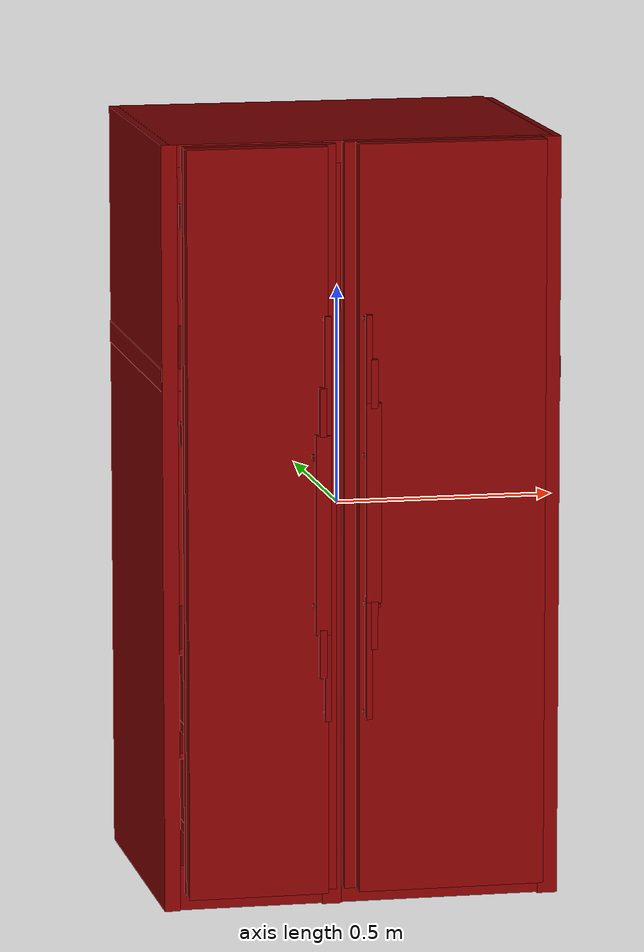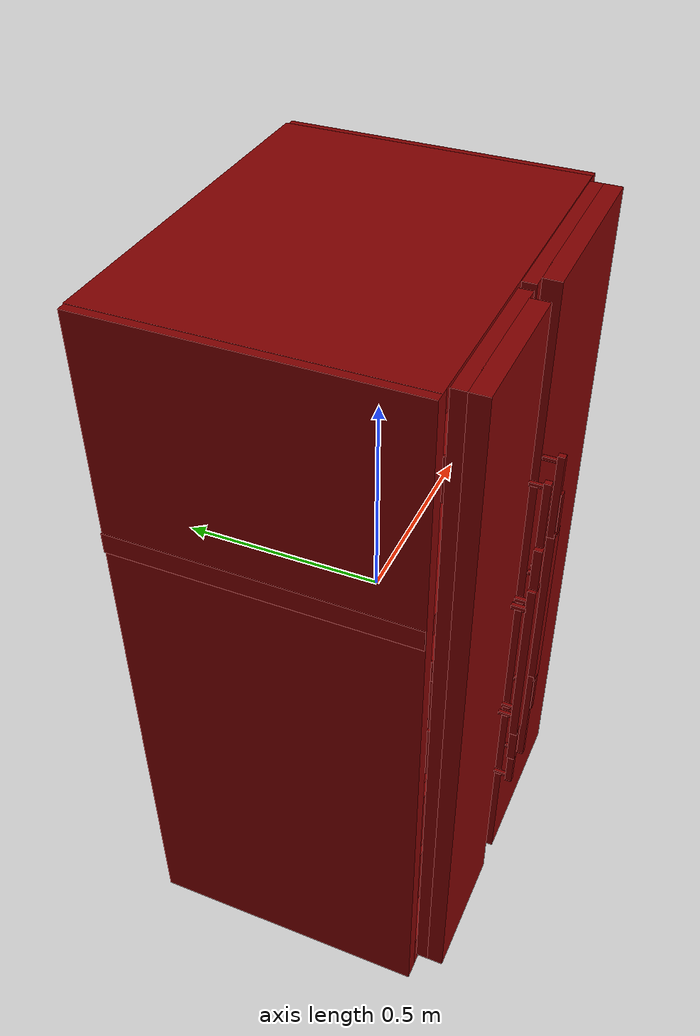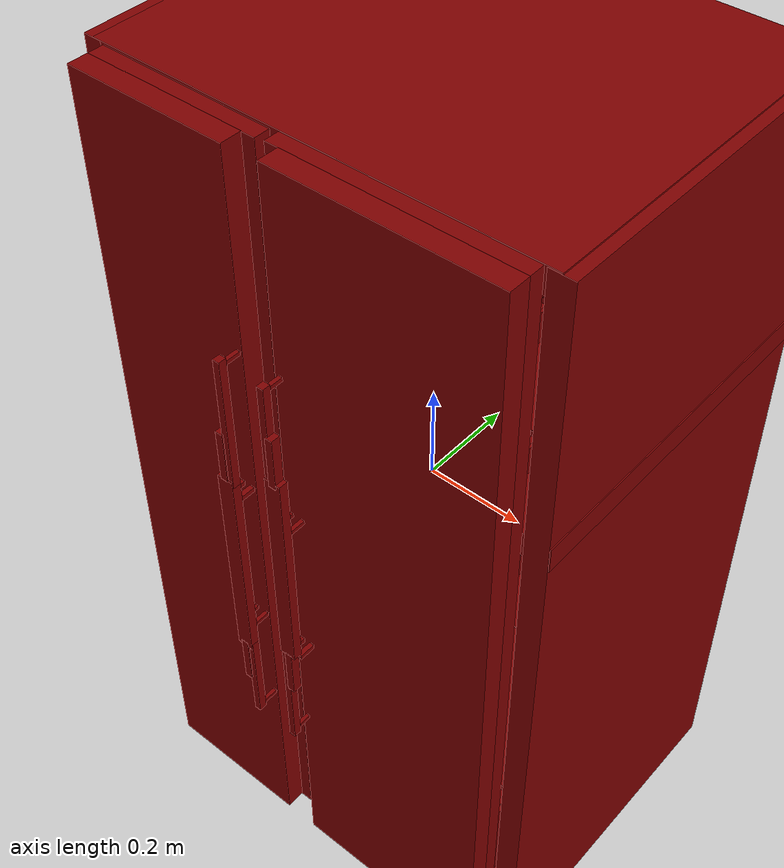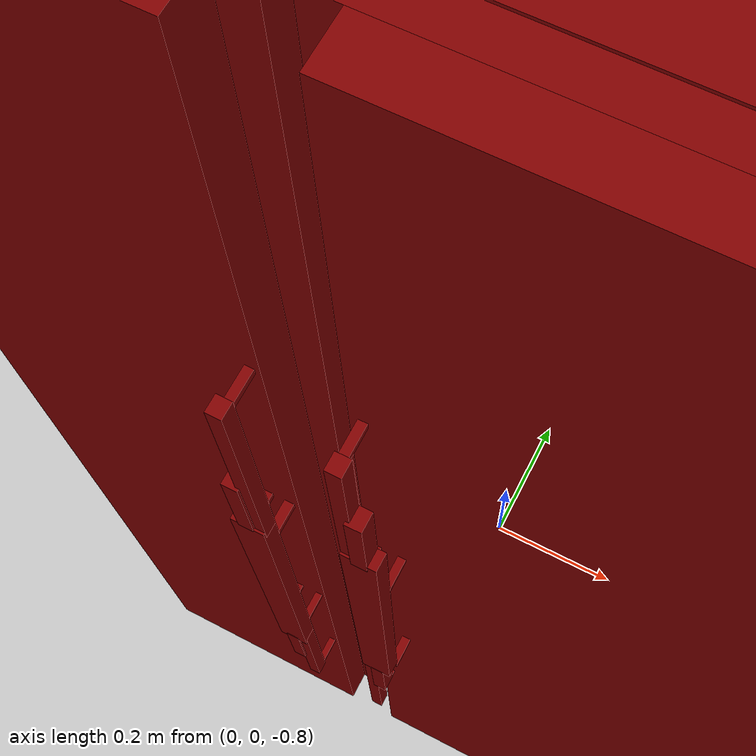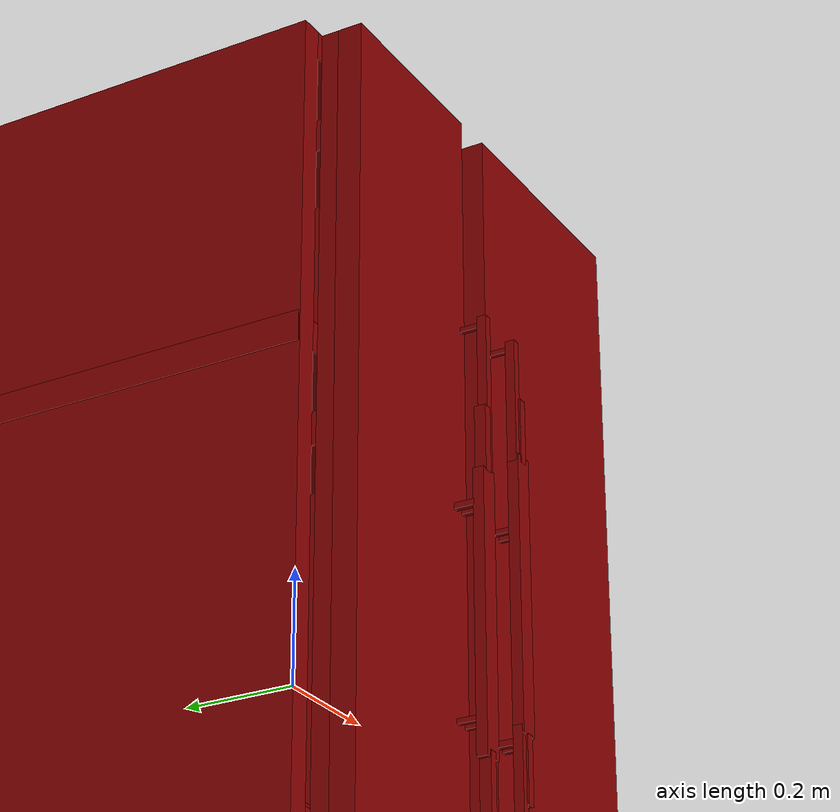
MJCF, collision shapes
<mujoco model="model">
  <compiler angle="radian"/>
  <asset>
    <mesh file="visuals/Body001.obj" name="Body001_vis"/>
    <mesh file="visuals/Body001_Clear.obj" name="Body001_Clear_vis"/>
    <mesh file="visuals/Door001.obj" name="Door001_vis"/>
    <mesh file="visuals/Door001_Clear.obj" name="Door001_Clear_vis"/>
    <mesh file="visuals/Door002.obj" name="Door002_vis"/>
    <mesh file="visuals/Door002_Clear.obj" name="Door002_Clear_vis"/>
    <mesh file="visuals/Drawer001.obj" name="Drawer001_vis"/>
    <mesh file="visuals/Drawer002.obj" name="Drawer002_vis"/>
    <mesh file="visuals/Drawer003.obj" name="Drawer003_vis"/>
    <texture file="visuals/T_BC001.png" name="Body001_material" type="2d"/>
    <material name="Body001_material" rgba="1 1 1 1.0" texture="Body001_material" shininess="0.2512328028678894" specular="0.3103448502657381"/>
    <texture file="visuals/T_BC001.png" name="Body001_Clear_material" type="2d"/>
    <material name="Body001_Clear_material" rgba="1 1 1 0.5330076217651367" texture="Body001_Clear_material" shininess="0.2512328028678894" specular="0.3103448502657381"/>
    <texture file="visuals/T_BC001.png" name="Door001_material" type="2d"/>
    <material name="Door001_material" rgba="1 1 1 1.0" texture="Door001_material" shininess="0.2512328028678894" specular="0.3103448502657381"/>
    <texture file="visuals/T_BC001.png" name="Door001_Clear_material" type="2d"/>
    <material name="Door001_Clear_material" rgba="1 1 1 0.5330076217651367" texture="Door001_Clear_material" shininess="0.2512328028678894" specular="0.3103448502657381"/>
    <texture file="visuals/T_BC001.png" name="Door002_material" type="2d"/>
    <material name="Door002_material" rgba="1 1 1 1.0" texture="Door002_material" shininess="0.2512328028678894" specular="0.3103448502657381"/>
    <texture file="visuals/T_BC001.png" name="Door002_Clear_material" type="2d"/>
    <material name="Door002_Clear_material" rgba="1 1 1 0.5330076217651367" texture="Door002_Clear_material" shininess="0.2512328028678894" specular="0.3103448502657381"/>
    <texture file="visuals/T_BC001.png" name="Drawer001_material" type="2d"/>
    <material name="Drawer001_material" rgba="1 1 1 1.0" texture="Drawer001_material" shininess="0.2512328028678894" specular="0.3103448502657381"/>
    <texture file="visuals/T_BC001.png" name="Drawer002_material" type="2d"/>
    <material name="Drawer002_material" rgba="1 1 1 1.0" texture="Drawer002_material" shininess="0.2512328028678894" specular="0.3103448502657381"/>
    <texture file="visuals/T_BC001.png" name="Drawer003_material" type="2d"/>
    <material name="Drawer003_material" rgba="1 1 1 1.0" texture="Drawer003_material" shininess="0.2512328028678894" specular="0.3103448502657381"/>
  </asset>
  <default>
    <default class="visual">
      <geom conaffinity="0" contype="0" group="1" type="mesh"/>
    </default>
    <default class="collision">
      <geom group="0" rgba="0.5 0 0 0.5"/>
    </default>
    <default class="spawn">
      <geom group="0" rgba="1 1 1 0.5" contype="0" conaffinity="0"/>
      <site group="0" rgba="1 1 1 0.5"/>
    </default>
    <default class="region">
      <geom group="1" conaffinity="0" contype="0" rgba="0 1 0 0"/>
    </default>
  </default>
  <worldbody>
    <body>
      <body name="object">
        <geom mesh="Body001_vis" type="mesh" solimp="0.998 0.998 0.001" solref="0.001 1" density="100" friction="0.95 0.3 0.1" class="visual" material="Body001_material"/>
        <geom class="collision" type="box" pos="-0.000009 0.061382 0.345156" size="0.4551748037338257 0.34732121229171753 0.024669639766216278" quat="1.0 0.0 0.0 0.0"/>
        <geom class="collision" type="box" pos="0.187564 0.043811 -0.051178" size="0.26039761304855347 0.20222607254981995 0.0018634488806128502" quat="1.0 0.0 0.0 0.0"/>
        <geom class="collision" type="box" pos="0.430015 0.059138 -0.000961" size="0.023106148466467857 0.3465227484703064 0.8700745701789856" quat="1.0 0.0 0.0 0.0"/>
        <geom class="collision" type="box" pos="-0.435713 0.059488 0.000448" size="0.017995212227106094 0.34687235951423645 0.8709715604782104" quat="1.0 0.0 0.0 0.0"/>
        <geom class="collision" type="box" pos="-0.001253 0.353783 -0.021303" size="0.4329327940940857 0.0541754849255085 0.8490660786628723" quat="1.0 0.0 0.0 0.0"/>
        <geom class="collision" type="box" pos="-0.001253 0.059835 -0.816540" size="0.4329327940940857 0.34721818566322327 0.05179665610194206" quat="1.0 0.0 0.0 0.0"/>
        <geom class="collision" type="box" pos="-0.001253 0.060632 0.847166" size="0.4329327940940857 0.34801560640335083 0.024715343490242958" quat="1.0 0.0 0.0 0.0"/>
        <geom class="collision" type="box" pos="-0.070540 0.058271 -0.000589" size="0.021640107035636902 0.34565427899360657 0.8703340888023376" quat="1.0 0.0 0.0 0.0"/>
        <geom class="collision" type="box" pos="-0.098335 0.063859 -0.312636" size="0.0029914805199950933 0.2397865653038025 0.008411023765802383" quat="1.0 0.0 0.0 0.0"/>
        <geom class="collision" type="box" pos="-0.414439 0.063859 -0.312636" size="0.00411334540694952 0.23978663980960846 0.008411029353737831" quat="1.0 0.0 0.0 0.0"/>
        <geom class="collision" type="box" pos="-0.098335 0.063859 -0.554068" size="0.00299148284830153 0.23978671431541443 0.008411034010350704" quat="1.0 0.0 0.0 0.0"/>
        <geom class="collision" type="box" pos="-0.414439 0.063859 -0.554068" size="0.004113347735255957 0.2397868037223816 0.008411038666963577" quat="1.0 0.0 0.0 0.0"/>
        <body name="Body001_Clear">
          <geom mesh="Body001_Clear_vis" type="mesh" solimp="0.998 0.998 0.001" solref="0.001 1" density="100" friction="0.95 0.3 0.1" class="visual" material="Body001_Clear_material"/>
          <geom class="collision" type="box" pos="-0.257040 0.051626 -0.296147" size="0.15733465552330017 0.23283542692661285 0.006855808664113283" quat="1.0 0.0 0.0 0.0"/>
          <geom class="collision" type="box" pos="-0.257040 0.051626 -0.537620" size="0.15733465552330017 0.23283542692661285 0.006855808664113283" quat="1.0 0.0 0.0 0.0"/>
          <geom class="collision" type="box" pos="0.179082 0.051626 -0.526268" size="0.22332853078842163 0.23283542692661285 0.006593691185116768" quat="1.0 0.0 0.0 0.0"/>
        </body>
        <body name="Door001">
          <joint axis="0.0 0.0 -1.0" pos="-0.415863 -0.320992 0.019250" limited="true" name="Door001_joint" range="0.0 1.5707963267948966" type="hinge" damping="1" frictionloss="1" armature=".01" stiffness="0.05"/>
          <geom mesh="Door001_vis" type="mesh" solimp="0.998 0.998 0.001" solref="0.001 1" density="100" friction="0.95 0.3 0.1" class="visual" material="Door001_material"/>
          <geom class="collision" type="box" pos="-0.111638 -0.398633 0.003568" size="0.017077449709177017 0.009212208911776543 0.2260974496603012" quat="1.0 0.0 0.0 0.0"/>
          <geom class="collision" type="box" pos="-0.237458 -0.304140 0.019879" size="0.17176243662834167 0.014860705472528934 0.8486267924308777" quat="1.0 0.0 0.0 0.0"/>
          <geom class="collision" type="box" pos="-0.250457 -0.338323 0.019879" size="0.15876346826553345 0.020233258605003357 0.8486267924308777" quat="1.0 0.0 0.0 0.0"/>
          <geom class="collision" type="box" pos="-0.101523 -0.397373 -0.315944" size="0.006962744519114494 0.007952835410833359 0.10452728718519211" quat="1.0 0.0 0.0 0.0"/>
          <geom class="collision" type="box" pos="-0.112621 -0.398857 -0.265896" size="0.007784663699567318 0.009436936117708683 0.054479122161865234" quat="1.0 0.0 0.0 0.0"/>
          <geom class="collision" type="box" pos="-0.101523 -0.397373 0.355696" size="0.006962744519114494 0.007952835410833359 0.14035047590732574" quat="1.0 0.0 0.0 0.0"/>
          <geom class="collision" type="box" pos="-0.112621 -0.398857 0.281305" size="0.007784663699567318 0.009436936117708683 0.054479122161865234" quat="1.0 0.0 0.0 0.0"/>
          <geom class="collision" type="box" pos="-0.099518 -0.374039 -0.408813" size="0.004085476975888014 0.0163087360560894 0.004085476975888014" quat="1.0 0.0 0.0 0.0"/>
          <geom class="collision" type="box" pos="-0.099518 -0.374039 -0.163676" size="0.004085476975888014 0.0163087360560894 0.004085476975888014" quat="1.0 0.0 0.0 0.0"/>
          <geom class="collision" type="box" pos="-0.124591 -0.374039 -0.163676" size="0.004085476975888014 0.0163087360560894 0.004085476975888014" quat="1.0 0.0 0.0 0.0"/>
          <geom class="collision" type="box" pos="-0.101832 -0.374039 0.174451" size="0.00505023030564189 0.017273489385843277 0.00505023030564189" quat="1.0 0.0 0.0 0.0"/>
          <geom class="collision" type="box" pos="-0.124497 -0.374039 0.174451" size="0.00505023030564189 0.017273489385843277 0.00505023030564189" quat="1.0 0.0 0.0 0.0"/>
          <geom class="collision" type="box" pos="-0.100583 -0.374828 0.483232" size="0.004085476975888014 0.0163087360560894 0.004085476975888014" quat="1.0 0.0 0.0 0.0"/>
          <body name="Door001_Clear">
            <geom mesh="Door001_Clear_vis" type="mesh" solimp="0.998 0.998 0.001" solref="0.001 1" density="100" friction="0.95 0.3 0.1" class="visual" material="Door001_Clear_material"/>
            <geom class="collision" type="box" pos="-0.292838 -0.188933 0.721048" size="0.10166554898023605 0.0009907971834763885 0.0039306567050516605" quat="0.9878596663475037 -0.15534904599189758 -0.0 0.0"/>
            <geom class="collision" type="box" pos="-0.395530 -0.238090 0.699530" size="0.0023995519150048494 0.047248587012290955 0.026977719739079475" quat="1.0 0.0 0.0 0.0"/>
            <geom class="collision" type="box" pos="-0.187393 -0.238090 0.699530" size="0.0023995533119887114 0.04724857211112976 0.02697771042585373" quat="1.0 0.0 0.0 0.0"/>
            <geom class="collision" type="box" pos="-0.291665 -0.239565 0.674302" size="0.10502640157938004 0.04872364550828934 0.002399544231593609" quat="1.0 0.0 0.0 0.0"/>
            <geom class="collision" type="box" pos="-0.291462 -0.188556 0.228221" size="0.10166563093662262 0.0009907978819683194 0.003930659033358097" quat="0.9825620055198669 -0.1859353482723236 -0.0 0.0"/>
            <geom class="collision" type="box" pos="-0.395530 -0.238090 0.206702" size="0.0023995547089725733 0.047248680144548416 0.026977764442563057" quat="1.0 0.0 0.0 0.0"/>
            <geom class="collision" type="box" pos="-0.187393 -0.238090 0.206702" size="0.002399554941803217 0.047248661518096924 0.02697775512933731" quat="1.0 0.0 0.0 0.0"/>
            <geom class="collision" type="box" pos="-0.291665 -0.239565 0.181475" size="0.10502658039331436 0.0487237349152565 0.0023995470255613327" quat="1.0 0.0 0.0 0.0"/>
          </body>
        </body>
        <body name="Door002">
          <joint axis="0.0 0.0 1.0" pos="0.421194 -0.326735 0.019919" limited="true" name="Door002_joint" range="0.0 1.5707963267948966" type="hinge" damping="1" frictionloss="1" armature=".01" stiffness="0.05"/>
          <geom mesh="Door002_vis" type="mesh" solimp="0.998 0.998 0.001" solref="0.001 1" density="100" friction="0.95 0.3 0.1" class="visual" material="Door002_material"/>
          <geom class="collision" type="box" pos="0.002212 -0.398633 0.072589" size="0.017077485099434853 0.009212208911776543 0.2260974496603012" quat="1.0 0.0 0.0 0.0"/>
          <geom class="collision" type="box" pos="0.178411 -0.304140 0.021697" size="0.22578851878643036 0.014860705472528934 0.8504474759101868" quat="1.0 0.0 0.0 0.0"/>
          <geom class="collision" type="box" pos="0.191455 -0.338323 0.021697" size="0.21288415789604187 0.020233258605003357 0.8504474759101868" quat="1.0 0.0 0.0 0.0"/>
          <geom class="collision" type="box" pos="-0.007903 -0.397373 0.392102" size="0.006962760351598263 0.007952835410833359 0.10452728718519211" quat="1.0 0.0 0.0 0.0"/>
          <geom class="collision" type="box" pos="0.003195 -0.398857 0.342053" size="0.007784671615809202 0.009436936117708683 0.054479122161865234" quat="1.0 0.0 0.0 0.0"/>
          <geom class="collision" type="box" pos="-0.007903 -0.397373 -0.279538" size="0.0069627659395337105 0.007952835410833359 0.14035047590732574" quat="1.0 0.0 0.0 0.0"/>
          <geom class="collision" type="box" pos="0.003195 -0.398857 -0.205148" size="0.007784671615809202 0.009436936117708683 0.054479122161865234" quat="1.0 0.0 0.0 0.0"/>
          <geom class="collision" type="box" pos="-0.009908 -0.374039 0.482862" size="0.004085477441549301 0.0163087360560894 0.004085477441549301" quat="1.0 0.0 0.0 0.0"/>
          <geom class="collision" type="box" pos="-0.009908 -0.374039 0.174613" size="0.004085477441549301 0.0163087360560894 0.004085477441549301" quat="1.0 0.0 0.0 0.0"/>
          <geom class="collision" type="box" pos="0.015165 -0.374039 0.174613" size="0.004085477441549301 0.0163087360560894 0.004085477441549301" quat="1.0 0.0 0.0 0.0"/>
          <geom class="collision" type="box" pos="-0.007594 -0.374039 -0.163549" size="0.005050230771303177 0.017273489385843277 0.005050230771303177" quat="1.0 0.0 0.0 0.0"/>
          <geom class="collision" type="box" pos="0.015071 -0.374039 -0.163549" size="0.005050230771303177 0.017273489385843277 0.005050230771303177" quat="1.0 0.0 0.0 0.0"/>
          <geom class="collision" type="box" pos="-0.009908 -0.374039 -0.410631" size="0.004085477441549301 0.0163087360560894 0.004085477441549301" quat="1.0 0.0 0.0 0.0"/>
          <body name="Door002_Clear">
            <geom mesh="Door002_Clear_vis" type="mesh" solimp="0.998 0.998 0.001" solref="0.001 1" density="100" friction="0.95 0.3 0.1" class="visual" material="Door002_Clear_material"/>
            <geom class="collision" type="box" pos="0.197083 -0.189310 0.718287" size="0.15822570025920868 0.0009907985804602504 0.003930661827325821" quat="0.9809228777885437 -0.1943971812725067 -0.0 0.0"/>
            <geom class="collision" type="box" pos="0.036454 -0.238416 0.699530" size="0.0023995637893676758 0.04790022596716881 0.026977892965078354" quat="1.0 0.0 0.0 0.0"/>
            <geom class="collision" type="box" pos="0.357711 -0.238416 0.699530" size="0.002399563090875745 0.04790017753839493 0.02697787806391716" quat="1.0 0.0 0.0 0.0"/>
            <geom class="collision" type="box" pos="0.196879 -0.240854 0.674302" size="0.16158682107925415 0.04743438959121704 0.0023995498195290565" quat="1.0 0.0 0.0 0.0"/>
            <geom class="collision" type="box" pos="0.197083 -0.189053 0.463170" size="0.1582258641719818 0.0009907992789521813 0.003930664621293545" quat="0.9897273182868958 -0.14296811819076538 -0.0 0.0"/>
            <geom class="collision" type="box" pos="0.036454 -0.237974 0.441652" size="0.0023995598312467337 0.04889832064509392 0.02697785198688507" quat="1.0 0.0 0.0 0.0"/>
            <geom class="collision" type="box" pos="0.357711 -0.237974 0.441652" size="0.002399560995399952 0.04889828711748123 0.026977842673659325" quat="1.0 0.0 0.0 0.0"/>
            <geom class="collision" type="box" pos="0.196879 -0.240854 0.416424" size="0.16158707439899445 0.047434478998184204 0.0023995526134967804" quat="1.0 0.0 0.0 0.0"/>
            <geom class="collision" type="box" pos="0.197083 -0.189025 0.226793" size="0.15822602808475494 0.0009907998610287905 0.003930666949599981" quat="0.9826822876930237 -0.1852986216545105 -0.0 0.0"/>
            <geom class="collision" type="box" pos="0.036454 -0.238930 0.206702" size="0.0023995637893676758 0.04757366701960564 0.026977935805916786" quat="1.0 0.0 0.0 0.0"/>
            <geom class="collision" type="box" pos="0.357711 -0.238930 0.206702" size="0.002399565652012825 0.04757363721728325 0.026977920904755592" quat="1.0 0.0 0.0 0.0"/>
            <geom class="collision" type="box" pos="0.219521 -0.240854 0.181475" size="0.13894535601139069 0.04743456840515137 0.0023995554074645042" quat="1.0 0.0 0.0 0.0"/>
          </body>
        </body>
        <body name="Drawer001">
          <joint axis="0.0 -1.0 0.0" pos="-0.231634 -0.032153 -0.430215" limited="true" name="Drawer001_joint" range="0.0 0.3" type="slide" damping="1" frictionloss="1" armature=".01" stiffness="0.05"/>
          <geom mesh="Drawer001_vis" type="mesh" solimp="0.998 0.998 0.001" solref="0.001 1" density="100" friction="0.95 0.3 0.1" class="visual" material="Drawer001_material"/>
          <geom class="collision" type="box" pos="-0.229612 0.010465 -0.515414" size="0.13149471580982208 0.24472130835056305 0.012957233935594559" quat="1.0 0.0 0.0 0.0"/>
          <geom class="collision" type="box" pos="-0.102995 0.010465 -0.432404" size="0.0044552055187523365 0.24472114443778992 0.09621692448854446" quat="1.0 0.0 0.0 0.0"/>
          <geom class="collision" type="box" pos="-0.356295 0.010465 -0.432404" size="0.00479042436927557 0.24472098052501678 0.09621687978506088" quat="1.0 0.0 0.0 0.0"/>
          <geom class="collision" type="box" pos="-0.229612 0.260400 -0.432404" size="0.13149447739124298 0.005242736078798771 0.0962168425321579" quat="1.0 0.0 0.0 0.0"/>
          <geom class="collision" type="box" pos="-0.229820 -0.241396 -0.432280" size="0.13128581643104553 0.007168053183704615 0.09609291702508926" quat="1.0 0.0 0.0 0.0"/>
        </body>
        <body name="Drawer002">
          <joint axis="0.0 -1.0 0.0" pos="-0.231544 -0.033395 -0.662985" limited="true" name="Drawer002_joint" range="0.0 0.3" type="slide" damping="1" frictionloss="1" armature=".01" stiffness="0.05"/>
          <geom mesh="Drawer002_vis" type="mesh" solimp="0.998 0.998 0.001" solref="0.001 1" density="100" friction="0.95 0.3 0.1" class="visual" material="Drawer002_material"/>
          <geom class="collision" type="box" pos="-0.229612 0.010465 -0.748028" size="0.13149431347846985 0.2447204887866974 0.01295718178153038" quat="1.0 0.0 0.0 0.0"/>
          <geom class="collision" type="box" pos="-0.102995 0.010465 -0.665018" size="0.004455192480236292 0.24472032487392426 0.09621671587228775" quat="1.0 0.0 0.0 0.0"/>
          <geom class="collision" type="box" pos="-0.356295 0.010465 -0.665018" size="0.004790411796420813 0.24472016096115112 0.09621667861938477" quat="1.0 0.0 0.0 0.0"/>
          <geom class="collision" type="box" pos="-0.229612 0.260400 -0.665018" size="0.13149406015872955 0.005242723040282726 0.09621663391590118" quat="1.0 0.0 0.0 0.0"/>
          <geom class="collision" type="box" pos="-0.229820 -0.241396 -0.664894" size="0.1312854140996933 0.007168027572333813 0.09609271585941315" quat="1.0 0.0 0.0 0.0"/>
        </body>
        <body name="Drawer003">
          <joint axis="0.0 -1.0 0.0" pos="0.154308 0.009376 -0.653329" limited="true" name="Drawer003_joint" range="0.0 0.3" type="slide" damping="1" frictionloss="1" armature=".01" stiffness="0.05"/>
          <geom mesh="Drawer003_vis" type="mesh" solimp="0.998 0.998 0.001" solref="0.001 1" density="100" friction="0.95 0.3 0.1" class="visual" material="Drawer003_material"/>
          <geom class="collision" type="box" pos="0.156673 0.049221 -0.745589" size="0.20167005062103271 0.20595814287662506 0.012957130558788776" quat="1.0 0.0 0.0 0.0"/>
          <geom class="collision" type="box" pos="0.353468 0.011485 -0.652917" size="0.004455061163753271 0.24427589774131775 0.10587838292121887" quat="1.0 0.0 0.0 0.0"/>
          <geom class="collision" type="box" pos="-0.040184 0.011485 -0.652917" size="0.004790280945599079 0.24427588284015656 0.10587834566831589" quat="1.0 0.0 0.0 0.0"/>
          <geom class="collision" type="box" pos="0.156675 0.260400 -0.652917" size="0.2016698122024536 0.005242710467427969 0.10588117688894272" quat="1.0 0.0 0.0 0.0"/>
          <geom class="collision" type="box" pos="0.156467 -0.236803 -0.652793" size="0.20146115124225616 0.0071680061519145966 0.1057572141289711" quat="1.0 0.0 0.0 0.0"/>
        </body>
        <geom class="region" name="reg_main" type="box" pos="0.0 0.024922499999999986 -5.000000000143778e-07" size="0.455693 0.38386549999999997 0.8728075"/>
      </body>
    </body>
  </worldbody>
  <actuator>
    <motor name="Door001_joint_actuator" joint="Door001_joint" gear="50"/>
    <motor name="Door002_joint_actuator" joint="Door002_joint" gear="50"/>
    <motor name="Drawer001_joint_actuator" joint="Drawer001_joint" gear="50"/>
    <motor name="Drawer002_joint_actuator" joint="Drawer002_joint" gear="50"/>
    <motor name="Drawer003_joint_actuator" joint="Drawer003_joint" gear="50"/>
  </actuator>
</mujoco>
